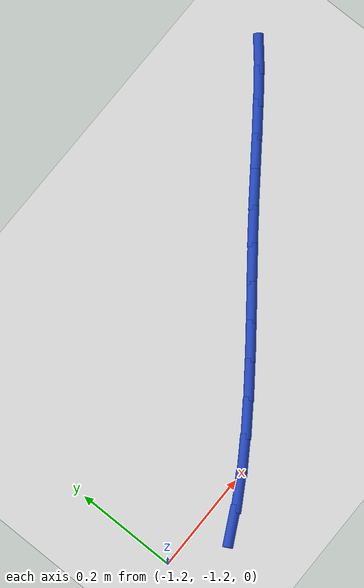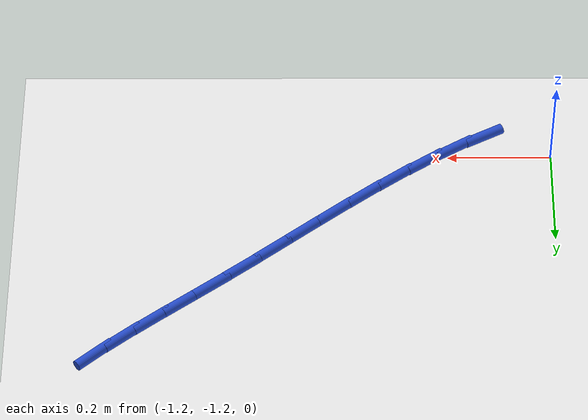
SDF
<sdf version="1.6">
 <world name="default">
  <model name="ground_plane">
   <static>1</static>
   <link name="link">
    <collision name="collision">
     <geometry><plane><normal>0 0 1</normal><size>100 100</size></plane></geometry>
     <surface><friction><ode><mu>100</mu><mu2>50</mu2></ode></friction></surface>
    </collision>
    <visual name="visual">
     <cast_shadows>0</cast_shadows>
     <geometry><plane><normal>0 0 1</normal><size>100 100</size></plane></geometry>
     <material>
      <script><uri>file://media/materials/scripts/gazebo.material</uri><name>Gazebo/WhiteGlow</name></script>
     </material>
    </visual>
   </link>
  </model>
  <model name="line">
   <link name="link_84">
    <pose>-1.071972897475021 -1.2482643512259635 0.01 0 1.57 0.480811747442738</pose>
    <collision name="collision">
     <geometry><cylinder><radius>0.01</radius><length>0.08</length></cylinder></geometry>
    </collision>
    <visual name="visual">
     <material>
      <script><name>Gazebo/Blue</name><uri>file://media/materials/scripts/gazebo.material</uri></script>
     </material>
     <geometry><cylinder><radius>0.01</radius><length>0.08</length></cylinder></geometry>
    </visual>
   </link>
   <link name="link_85">
    <pose>-1.0141063878120002 -1.2180786891782744 0.01 0 1.57 0.5396624487954375</pose>
    <collision name="collision">
     <geometry><cylinder><radius>0.01</radius><length>0.08</length></cylinder></geometry>
    </collision>
    <visual name="visual">
     <material>
      <script><name>Gazebo/Blue</name><uri>file://media/materials/scripts/gazebo.material</uri></script>
     </material>
     <geometry><cylinder><radius>0.01</radius><length>0.08</length></cylinder></geometry>
    </visual>
   </link>
   <link name="link_86">
    <pose>-0.9557531422170269 -1.1831267944734876 0.01 0 1.57 0.5842314620943844</pose>
    <collision name="collision">
     <geometry><cylinder><radius>0.01</radius><length>0.08</length></cylinder></geometry>
    </collision>
    <visual name="visual">
     <material>
      <script><name>Gazebo/Blue</name><uri>file://media/materials/scripts/gazebo.material</uri></script>
     </material>
     <geometry><cylinder><radius>0.01</radius><length>0.08</length></cylinder></geometry>
    </visual>
   </link>
   <link name="link_87">
    <pose>-0.8970975805285596 -1.1443417957564441 0.01 0 1.57 0.6169059352395614</pose>
    <collision name="collision">
     <geometry><cylinder><radius>0.01</radius><length>0.08</length></cylinder></geometry>
    </collision>
    <visual name="visual">
     <material>
      <script><name>Gazebo/Blue</name><uri>file://media/materials/scripts/gazebo.material</uri></script>
     </material>
     <geometry><cylinder><radius>0.01</radius><length>0.08</length></cylinder></geometry>
    </visual>
   </link>
   <link name="link_88">
    <pose>-0.8383241225850594 -1.1026568216719874 0.01 0 1.57 0.6393633812674732</pose>
    <collision name="collision">
     <geometry><cylinder><radius>0.01</radius><length>0.08</length></cylinder></geometry>
    </collision>
    <visual name="visual">
     <material>
      <script><name>Gazebo/Blue</name><uri>file://media/materials/scripts/gazebo.material</uri></script>
     </material>
     <geometry><cylinder><radius>0.01</radius><length>0.08</length></cylinder></geometry>
    </visual>
   </link>
   <link name="link_89">
    <pose>-0.7796171882249846 -1.059005000864958 0.01 0 1.57 0.6526728027928824</pose>
    <collision name="collision">
     <geometry><cylinder><radius>0.01</radius><length>0.08</length></cylinder></geometry>
    </collision>
    <visual name="visual">
     <material>
      <script><name>Gazebo/Blue</name><uri>file://media/materials/scripts/gazebo.material</uri></script>
     </material>
     <geometry><cylinder><radius>0.01</radius><length>0.08</length></cylinder></geometry>
    </visual>
   </link>
   <link name="link_90">
    <pose>-0.721161197286797 -1.0143194619802 0.01 0 1.57 0.6573704787127964</pose>
    <collision name="collision">
     <geometry><cylinder><radius>0.01</radius><length>0.08</length></cylinder></geometry>
    </collision>
    <visual name="visual">
     <material>
      <script><name>Gazebo/Blue</name><uri>file://media/materials/scripts/gazebo.material</uri></script>
     </material>
     <geometry><cylinder><radius>0.01</radius><length>0.08</length></cylinder></geometry>
    </visual>
   </link>
   <link name="link_91">
    <pose>-0.6631405696089541 -0.9695333336625538 0.01 0 1.57 0.6534929780563795</pose>
    <collision name="collision">
     <geometry><cylinder><radius>0.01</radius><length>0.08</length></cylinder></geometry>
    </collision>
    <visual name="visual">
     <material>
      <script><name>Gazebo/Blue</name><uri>file://media/materials/scripts/gazebo.material</uri></script>
     </material>
     <geometry><cylinder><radius>0.01</radius><length>0.08</length></cylinder></geometry>
    </visual>
   </link>
   <link name="link_92">
    <pose>-0.6057397250299181 -0.9255797445568633 0.01 0 1.57 0.6413693208272654</pose>
    <collision name="collision">
     <geometry><cylinder><radius>0.01</radius><length>0.08</length></cylinder></geometry>
    </collision>
    <visual name="visual">
     <material>
      <script><name>Gazebo/Blue</name><uri>file://media/materials/scripts/gazebo.material</uri></script>
     </material>
     <geometry><cylinder><radius>0.01</radius><length>0.08</length></cylinder></geometry>
    </visual>
   </link>
   <link name="link_93">
    <pose>-0.5491500020131576 -0.8833256474516988 0.01 0 1.57 0.6313381414212323</pose>
    <collision name="collision">
     <geometry><cylinder><radius>0.01</radius><length>0.08</length></cylinder></geometry>
    </collision>
    <visual name="visual">
     <material>
      <script><name>Gazebo/Blue</name><uri>file://media/materials/scripts/gazebo.material</uri></script>
     </material>
     <geometry><cylinder><radius>0.01</radius><length>0.08</length></cylinder></geometry>
    </visual>
   </link>
   <link name="link_94">
    <pose>-0.49365557827816164 -0.8427499982788952 0.01 0 1.57 0.631754791086231</pose>
    <collision name="collision">
     <geometry><cylinder><radius>0.01</radius><length>0.08</length></cylinder></geometry>
    </collision>
    <visual name="visual">
     <material>
      <script><name>Gazebo/Blue</name><uri>file://media/materials/scripts/gazebo.material</uri></script>
     </material>
     <geometry><cylinder><radius>0.01</radius><length>0.08</length></cylinder></geometry>
    </visual>
   </link>
   <link name="link_95">
    <pose>-0.4396070012210536 -0.8031969346104162 0.01 0 1.57 0.643648400055287</pose>
    <collision name="collision">
     <geometry><cylinder><radius>0.01</radius><length>0.08</length></cylinder></geometry>
    </collision>
    <visual name="visual">
     <material>
      <script><name>Gazebo/Blue</name><uri>file://media/materials/scripts/gazebo.material</uri></script>
     </material>
     <geometry><cylinder><radius>0.01</radius><length>0.08</length></cylinder></geometry>
    </visual>
   </link>
   <link name="link_96">
    <pose>-0.3873562552966715 -0.7639968487161434 0.01 0 1.57 0.6678386076110262</pose>
    <collision name="collision">
     <geometry><cylinder><radius>0.01</radius><length>0.08</length></cylinder></geometry>
    </collision>
    <visual name="visual">
     <material>
      <script><name>Gazebo/Blue</name><uri>file://media/materials/scripts/gazebo.material</uri></script>
     </material>
     <geometry><cylinder><radius>0.01</radius><length>0.08</length></cylinder></geometry>
    </visual>
   </link>
   <link name="link_97">
    <pose>-0.33725532495985094 -0.7244801328659571 0.01 0 1.57 0.705026729988395</pose>
    <collision name="collision">
     <geometry><cylinder><radius>0.01</radius><length>0.08</length></cylinder></geometry>
    </collision>
    <visual name="visual">
     <material>
      <script><name>Gazebo/Blue</name><uri>file://media/materials/scripts/gazebo.material</uri></script>
     </material>
     <geometry><cylinder><radius>0.01</radius><length>0.08</length></cylinder></geometry>
    </visual>
   </link>
  </model>
 </world>
</sdf>
